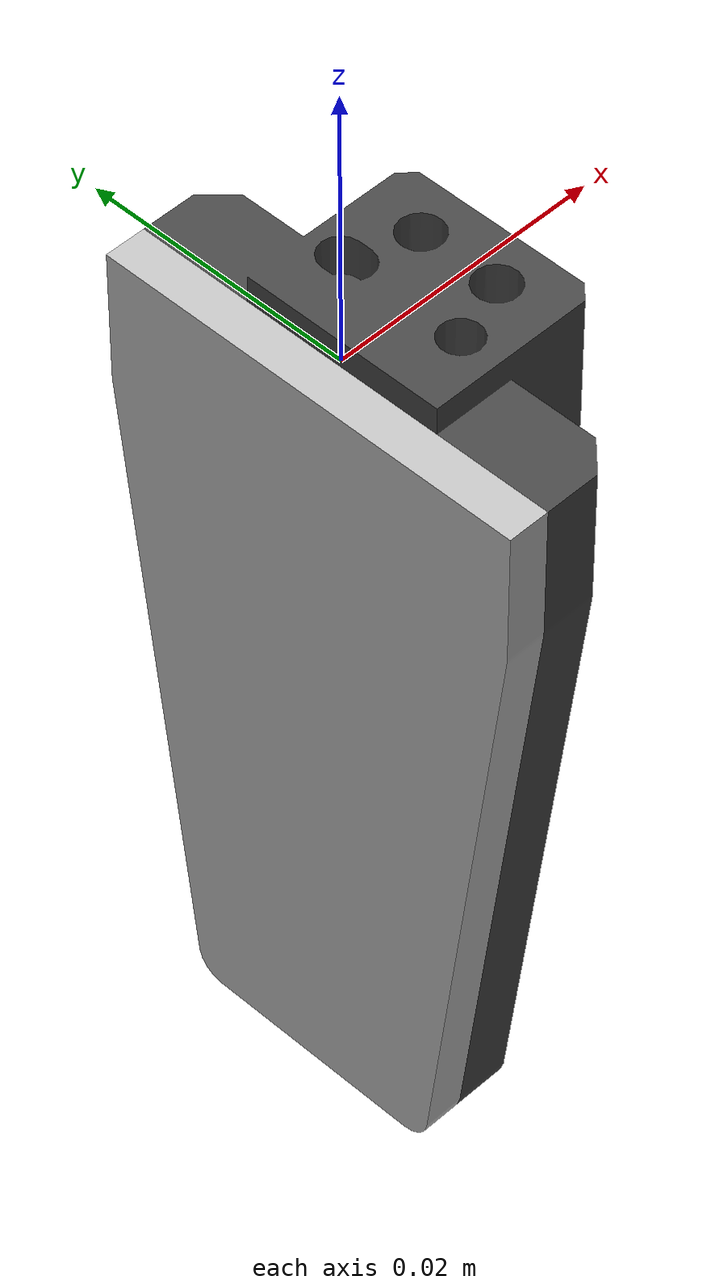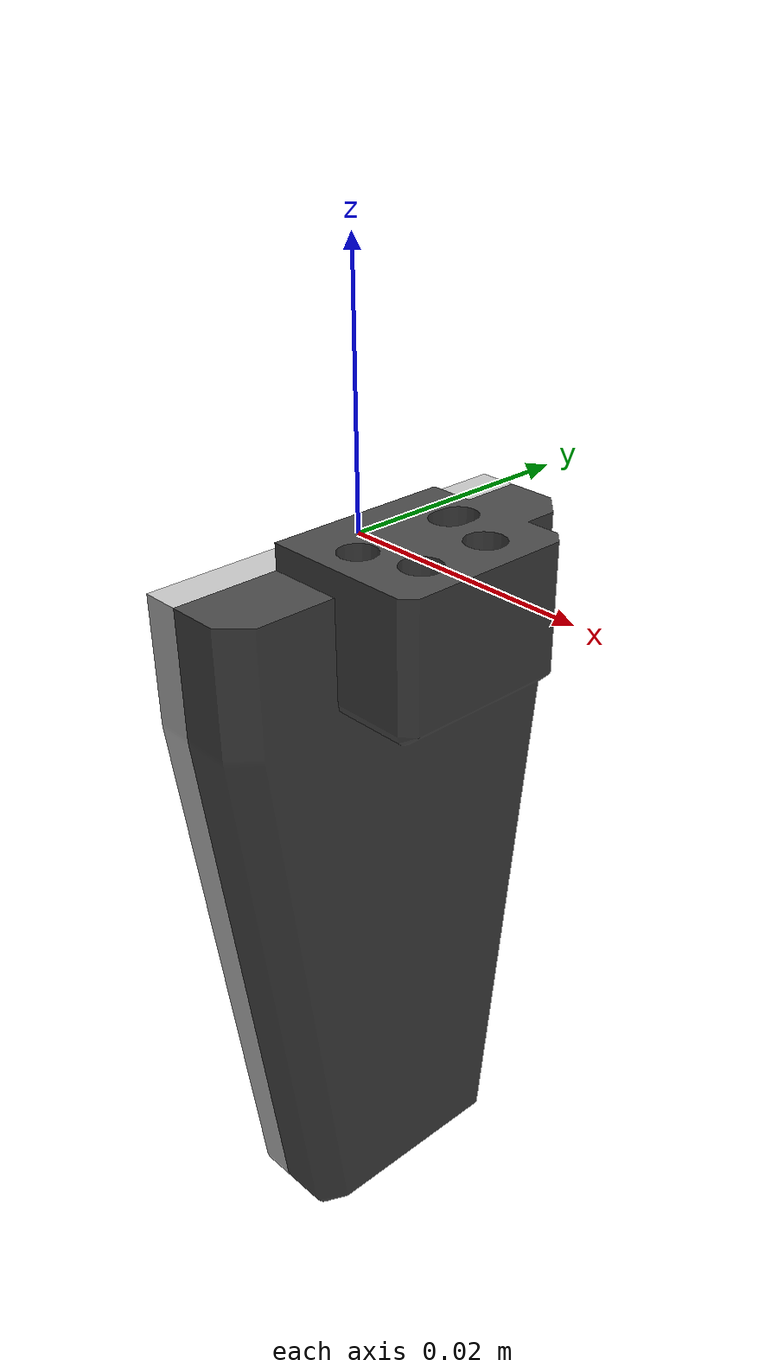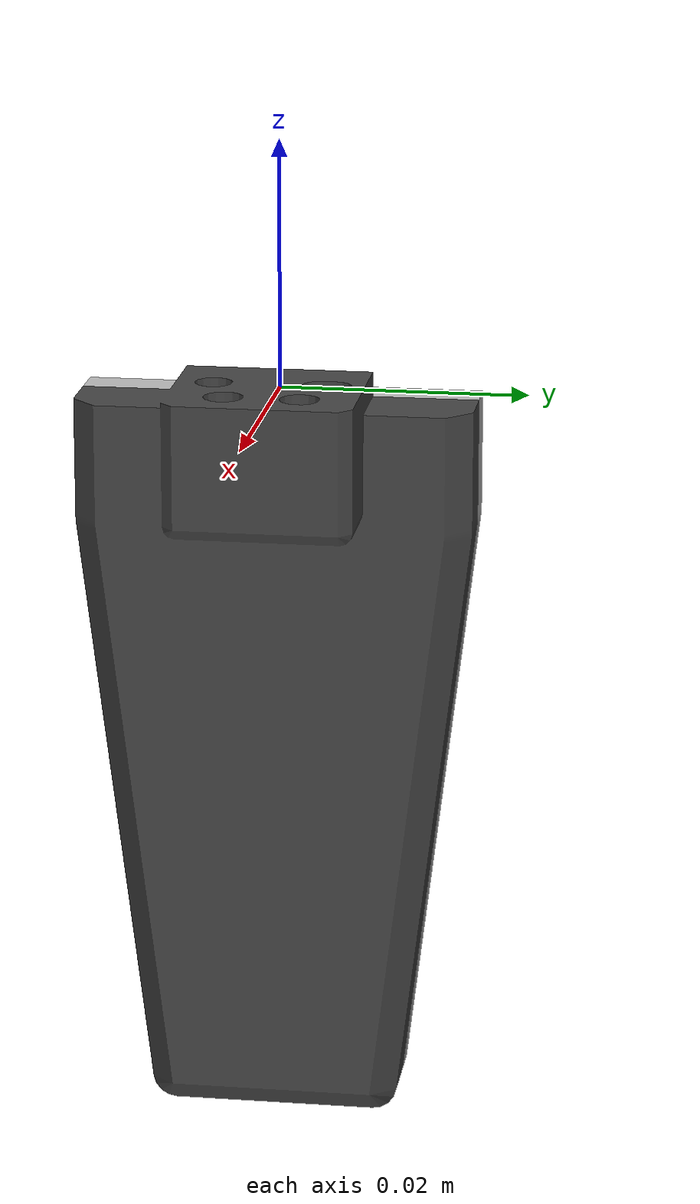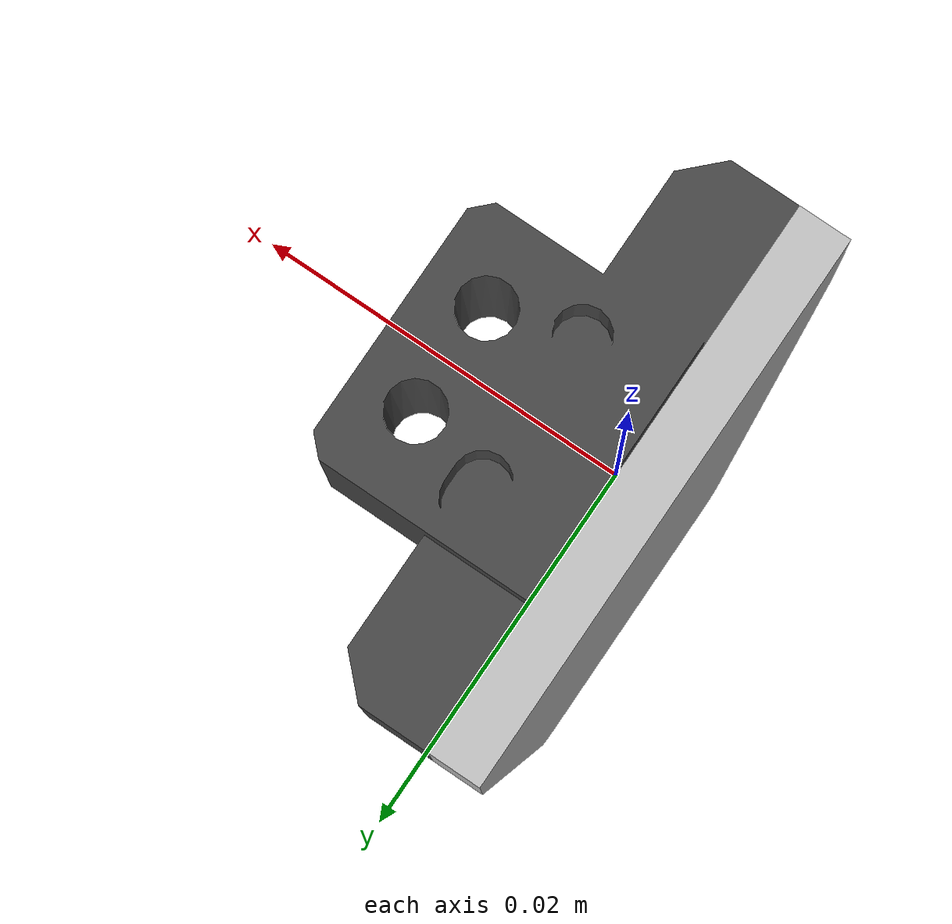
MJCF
<mujoco model="EE_FINGER">
  <default>
    <default class="visual">
      <geom group="2" type="mesh" contype="0" conaffinity="0"/>
    </default>
    <default class="collision">
      <geom group="3" type="mesh"/>
    </default>
  </default>
  <asset>
    <material name="70,70,70" specular="0.27451" shininess="1.0" rgba="0.274510 0.274510 0.274510 1.000000"/>
    <material name="191,191,191" specular="0.0" shininess="0.3" rgba="0.749020 0.749020 0.749020 1.000000"/>
    <mesh file="EE_FINGER_0.obj"/>
    <mesh file="EE_FINGER_1.obj"/>
    <mesh file="EE_FINGER_collision_0.obj"/>
    <mesh file="EE_FINGER_collision_1.obj"/>
    <mesh file="EE_FINGER_collision_2.obj"/>
    <mesh file="EE_FINGER_collision_3.obj"/>
    <mesh file="EE_FINGER_collision_4.obj"/>
  </asset>
  <worldbody>
    <body name="EE_FINGER">
      <geom mesh="EE_FINGER_0" material="191,191,191" class="visual"/>
      <geom mesh="EE_FINGER_1" material="70,70,70" class="visual"/>
      <geom mesh="EE_FINGER_collision_0" rgba="0.7479199743583023 0.9335184660993933 0.14289749523838424 1" class="collision"/>
      <geom mesh="EE_FINGER_collision_1" rgba="0.32038481315119505 0.5862610035687942 0.9794195370643665 1" class="collision"/>
      <geom mesh="EE_FINGER_collision_2" rgba="0.6326805494895114 0.001833319644712006 0.14607794572368815 1" class="collision"/>
      <geom mesh="EE_FINGER_collision_3" rgba="0.3492875372698879 0.2392409086887345 0.48419667126899146 1" class="collision"/>
      <geom mesh="EE_FINGER_collision_4" rgba="0.4031057325466749 0.028299701492414897 0.2506916386600051 1" class="collision"/>
    </body>
  </worldbody>
</mujoco>
